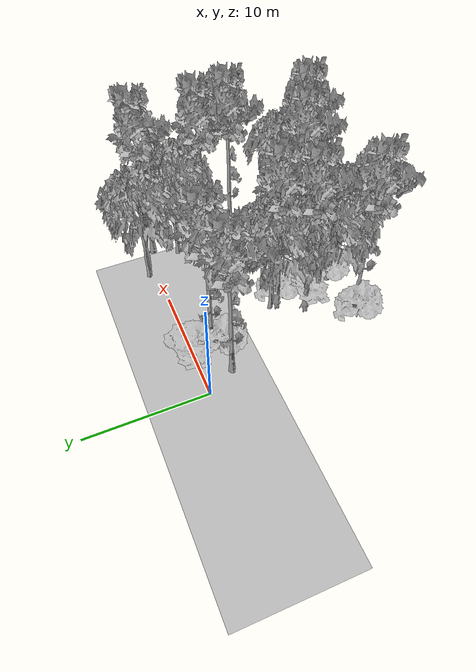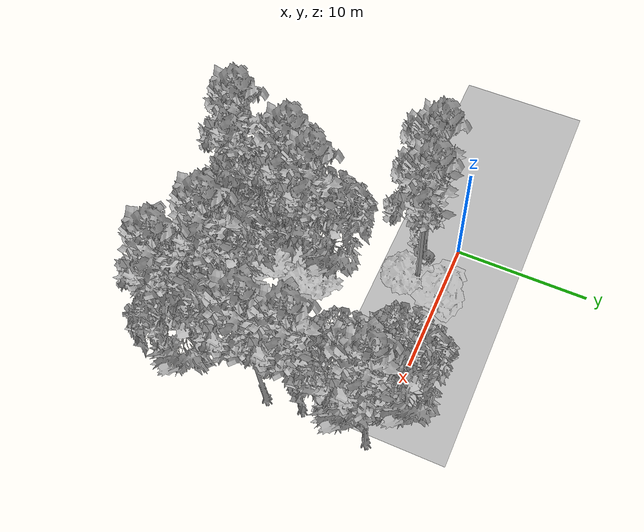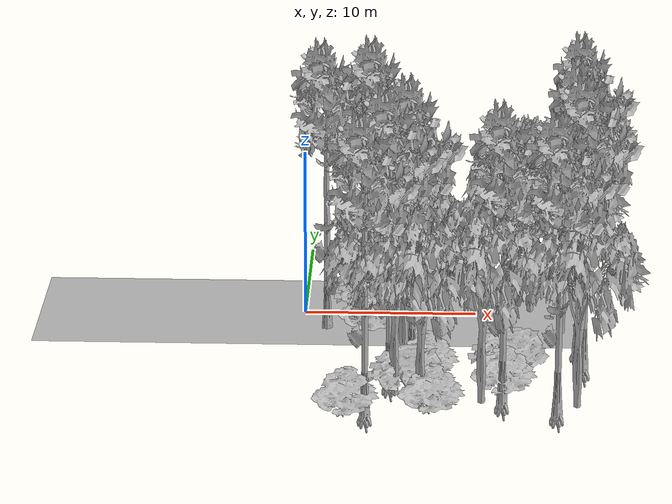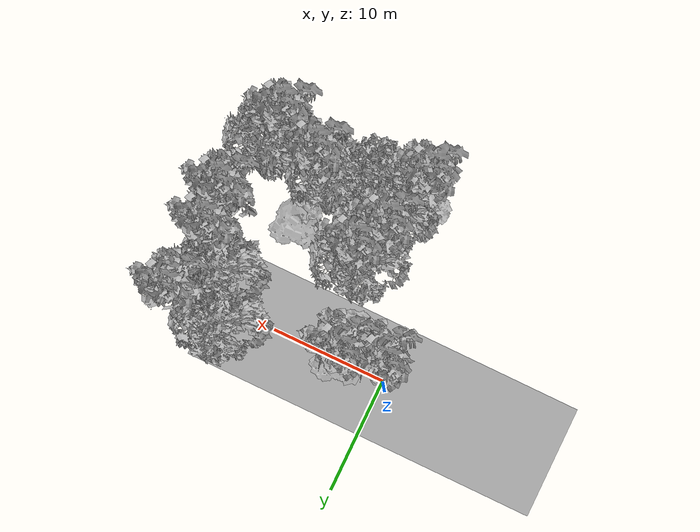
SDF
<sdf version="1.7">
 <world name="default">
  <model name="ground_plane">
   <static>1</static>
   <link name="link">
    <collision name="collision">
     <pose>-50 0 0 0 -0 0</pose>
     <geometry><plane><normal>0 0 1</normal><size>100 100</size></plane></geometry>
     <surface><contact><ode><min_depth>0.01</min_depth><max_vel>0</max_vel></ode></contact></surface>
    </collision>
    <visual name="grass">
     <cast_shadows>0</cast_shadows>
     <geometry>
      <mesh>
       <scale>0.5814285714285714 0.18142857142857144 0.1</scale>
       <uri>file://grass_plane/meshes/grass_plane.dae</uri>
      </mesh>
     </geometry>
    </visual>
   </link>
  </model>
  <model name="Tree 2">
   <static>1</static>
   <pose>14.374768445427776 -14.266316899726641 0 1.57079 -0 0</pose>
   <link name="link">
    <collision name="collision">
     <geometry><mesh><scale>3.5 5 3.5</scale><uri>model://tree_9/meshes/tree_9.obj</uri></mesh></geometry>
    </collision>
    <visual name="visual">
     <geometry><mesh><scale>3.5 5 3.5</scale><uri>model://tree_9/meshes/tree_9.obj</uri></mesh></geometry>
    </visual>
   </link>
  </model>
  <model name="Tree 22">
   <static>1</static>
   <pose>11.29381462864442 -11.099675055511366 0 1.57079 -0 0</pose>
   <link name="link">
    <collision name="collision">
     <geometry><mesh><scale>4 2.5 4</scale><uri>model://tree_1/meshes/tree_1.obj</uri></mesh></geometry>
    </collision>
    <visual name="visual">
     <geometry><mesh><scale>4 2.5 4</scale><uri>model://tree_1/meshes/tree_1.obj</uri></mesh></geometry>
    </visual>
   </link>
  </model>
  <model name="Tree 30">
   <static>1</static>
   <pose>14.890058464222292 -2.6212985577836694 0 1.57079 -0 0</pose>
   <link name="link">
    <collision name="collision">
     <geometry><mesh><scale>3.5 5 3.5</scale><uri>model://tree_2/meshes/tree_2.obj</uri></mesh></geometry>
    </collision>
    <visual name="visual">
     <geometry><mesh><scale>3.5 5 3.5</scale><uri>model://tree_2/meshes/tree_2.obj</uri></mesh></geometry>
    </visual>
   </link>
  </model>
  <model name="Tree 39">
   <static>1</static>
   <pose>13.136974198922417 0.6259014257530495 0 1.57079 -0 0</pose>
   <link name="link">
    <collision name="collision">
     <geometry><mesh><scale>3.5 5 3.5</scale><uri>model://tree_2/meshes/tree_2.obj</uri></mesh></geometry>
    </collision>
    <visual name="visual">
     <geometry><mesh><scale>3.5 5 3.5</scale><uri>model://tree_2/meshes/tree_2.obj</uri></mesh></geometry>
    </visual>
   </link>
  </model>
  <model name="Tree 81">
   <static>1</static>
   <pose>1.3451371119177864 -2.3091376741114598 0 1.57079 -0 0</pose>
   <link name="link">
    <collision name="collision">
     <geometry><mesh><scale>3.5 5 3.5</scale><uri>model://tree_9/meshes/tree_9.obj</uri></mesh></geometry>
    </collision>
    <visual name="visual">
     <geometry><mesh><scale>3.5 5 3.5</scale><uri>model://tree_9/meshes/tree_9.obj</uri></mesh></geometry>
    </visual>
   </link>
  </model>
  <model name="Tree 84">
   <static>1</static>
   <pose>16.02669139717615 -8.114682390269344 0 1.57079 -0 0</pose>
   <link name="link">
    <collision name="collision">
     <geometry><mesh><scale>3.5 5 3.5</scale><uri>model://tree_9/meshes/tree_9.obj</uri></mesh></geometry>
    </collision>
    <visual name="visual">
     <geometry><mesh><scale>3.5 5 3.5</scale><uri>model://tree_9/meshes/tree_9.obj</uri></mesh></geometry>
    </visual>
   </link>
  </model>
  <model name="Tree 108">
   <static>1</static>
   <pose>11.383459918608743 -12.845297648105404 0 1.57079 -0 0</pose>
   <link name="link">
    <collision name="collision">
     <geometry><mesh><scale>3.5 5 3.5</scale><uri>model://tree_9/meshes/tree_9.obj</uri></mesh></geometry>
    </collision>
    <visual name="visual">
     <geometry><mesh><scale>3.5 5 3.5</scale><uri>model://tree_9/meshes/tree_9.obj</uri></mesh></geometry>
    </visual>
   </link>
  </model>
  <model name="Tree 111">
   <static>1</static>
   <pose>6.816285070895688 -13.580637002414706 0 1.57079 -0 0</pose>
   <link name="link">
    <collision name="collision">
     <geometry><mesh><scale>3.5 5 3.5</scale><uri>model://tree_2/meshes/tree_2.obj</uri></mesh></geometry>
    </collision>
    <visual name="visual">
     <geometry><mesh><scale>3.5 5 3.5</scale><uri>model://tree_2/meshes/tree_2.obj</uri></mesh></geometry>
    </visual>
   </link>
  </model>
  <model name="Tree 123">
   <static>1</static>
   <pose>3.850670715000419 -14.683274335668377 0 1.57079 -0 0</pose>
   <link name="link">
    <collision name="collision">
     <geometry><mesh><scale>3.5 5 3.5</scale><uri>model://tree_9/meshes/tree_9.obj</uri></mesh></geometry>
    </collision>
    <visual name="visual">
     <geometry><mesh><scale>3.5 5 3.5</scale><uri>model://tree_9/meshes/tree_9.obj</uri></mesh></geometry>
    </visual>
   </link>
  </model>
  <model name="Tree 127">
   <static>1</static>
   <pose>3.6704576468748655 -2.5003399482191586 0 1.57079 -0 0</pose>
   <link name="link">
    <collision name="collision">
     <geometry><mesh><scale>4 2.5 4</scale><uri>model://tree_1/meshes/tree_1.obj</uri></mesh></geometry>
    </collision>
    <visual name="visual">
     <geometry><mesh><scale>4 2.5 4</scale><uri>model://tree_1/meshes/tree_1.obj</uri></mesh></geometry>
    </visual>
   </link>
  </model>
  <model name="Tree 129">
   <static>1</static>
   <pose>5.802538944356812 -7.6661183372397055 0 1.57079 -0 0</pose>
   <link name="link">
    <collision name="collision">
     <geometry><mesh><scale>3.5 5 3.5</scale><uri>model://tree_2/meshes/tree_2.obj</uri></mesh></geometry>
    </collision>
    <visual name="visual">
     <geometry><mesh><scale>3.5 5 3.5</scale><uri>model://tree_2/meshes/tree_2.obj</uri></mesh></geometry>
    </visual>
   </link>
  </model>
  <model name="Tree 159">
   <static>1</static>
   <pose>15.432079053332686 -13.052223563453492 0 1.57079 -0 0</pose>
   <link name="link">
    <collision name="collision">
     <geometry><mesh><scale>3.5 5 3.5</scale><uri>model://tree_2/meshes/tree_2.obj</uri></mesh></geometry>
    </collision>
    <visual name="visual">
     <geometry><mesh><scale>3.5 5 3.5</scale><uri>model://tree_2/meshes/tree_2.obj</uri></mesh></geometry>
    </visual>
   </link>
  </model>
  <model name="Tree 162">
   <static>1</static>
   <pose>5.356654157508665 -11.734552383005962 0 1.57079 -0 0</pose>
   <link name="link">
    <collision name="collision">
     <geometry><mesh><scale>3.5 5 3.5</scale><uri>model://tree_2/meshes/tree_2.obj</uri></mesh></geometry>
    </collision>
    <visual name="visual">
     <geometry><mesh><scale>3.5 5 3.5</scale><uri>model://tree_2/meshes/tree_2.obj</uri></mesh></geometry>
    </visual>
   </link>
  </model>
  <model name="Tree 167">
   <static>1</static>
   <pose>2.584979348222845 -14.254738411093577 0 1.57079 -0 0</pose>
   <link name="link">
    <collision name="collision">
     <geometry><mesh><scale>4 2.5 4</scale><uri>model://tree_1/meshes/tree_1.obj</uri></mesh></geometry>
    </collision>
    <visual name="visual">
     <geometry><mesh><scale>4 2.5 4</scale><uri>model://tree_1/meshes/tree_1.obj</uri></mesh></geometry>
    </visual>
   </link>
  </model>
  <model name="Tree 170">
   <static>1</static>
   <pose>5.111862936082737 -10.540897317580361 0 1.57079 -0 0</pose>
   <link name="link">
    <collision name="collision">
     <geometry><mesh><scale>3.5 5 3.5</scale><uri>model://tree_9/meshes/tree_9.obj</uri></mesh></geometry>
    </collision>
    <visual name="visual">
     <geometry><mesh><scale>3.5 5 3.5</scale><uri>model://tree_9/meshes/tree_9.obj</uri></mesh></geometry>
    </visual>
   </link>
  </model>
  <model name="Tree 175">
   <static>1</static>
   <pose>4.048351936997314 -0.10338214217612851 0 1.57079 -0 0</pose>
   <link name="link">
    <collision name="collision">
     <geometry><mesh><scale>3 2 3</scale><uri>model://tree_3/meshes/tree_3.obj</uri></mesh></geometry>
    </collision>
    <visual name="visual">
     <geometry><mesh><scale>3 2 3</scale><uri>model://tree_3/meshes/tree_3.obj</uri></mesh></geometry>
    </visual>
   </link>
  </model>
  <model name="Tree 187">
   <static>1</static>
   <pose>6.342143412628609 -8.47081315666378 0 1.57079 -0 0</pose>
   <link name="link">
    <collision name="collision">
     <geometry><mesh><scale>3.5 5 3.5</scale><uri>model://tree_9/meshes/tree_9.obj</uri></mesh></geometry>
    </collision>
    <visual name="visual">
     <geometry><mesh><scale>3.5 5 3.5</scale><uri>model://tree_9/meshes/tree_9.obj</uri></mesh></geometry>
    </visual>
   </link>
  </model>
  <model name="Tree 196">
   <static>1</static>
   <pose>7.2906518444481705 -13.742269618722064 0 1.57079 -0 0</pose>
   <link name="link">
    <collision name="collision">
     <geometry><mesh><scale>4 2.5 4</scale><uri>model://tree_1/meshes/tree_1.obj</uri></mesh></geometry>
    </collision>
    <visual name="visual">
     <geometry><mesh><scale>4 2.5 4</scale><uri>model://tree_1/meshes/tree_1.obj</uri></mesh></geometry>
    </visual>
   </link>
  </model>
  <model name="Tree 207">
   <static>1</static>
   <pose>11.90162271325439 -8.733679386153472 0 1.57079 -0 0</pose>
   <link name="link">
    <collision name="collision">
     <geometry><mesh><scale>3 2 3</scale><uri>model://tree_3/meshes/tree_3.obj</uri></mesh></geometry>
    </collision>
    <visual name="visual">
     <geometry><mesh><scale>3 2 3</scale><uri>model://tree_3/meshes/tree_3.obj</uri></mesh></geometry>
    </visual>
   </link>
  </model>
  <model name="Tree 222">
   <static>1</static>
   <pose>10.160218929883932 -12.645455089025047 0 1.57079 -0 0</pose>
   <link name="link">
    <collision name="collision">
     <geometry><mesh><scale>3.5 5 3.5</scale><uri>model://tree_2/meshes/tree_2.obj</uri></mesh></geometry>
    </collision>
    <visual name="visual">
     <geometry><mesh><scale>3.5 5 3.5</scale><uri>model://tree_2/meshes/tree_2.obj</uri></mesh></geometry>
    </visual>
   </link>
  </model>
  <model name="Tree 226">
   <static>1</static>
   <pose>16.19581596352269 -0.5945380688487081 0 1.57079 -0 0</pose>
   <link name="link">
    <collision name="collision">
     <geometry><mesh><scale>3.5 5 3.5</scale><uri>model://tree_9/meshes/tree_9.obj</uri></mesh></geometry>
    </collision>
    <visual name="visual">
     <geometry><mesh><scale>3.5 5 3.5</scale><uri>model://tree_9/meshes/tree_9.obj</uri></mesh></geometry>
    </visual>
   </link>
  </model>
  <model name="Tree 230">
   <static>1</static>
   <pose>4.1971367598955425 -1.7372275467740277 0 1.57079 -0 0</pose>
   <link name="link">
    <collision name="collision">
     <geometry><mesh><scale>3.5 5 3.5</scale><uri>model://tree_9/meshes/tree_9.obj</uri></mesh></geometry>
    </collision>
    <visual name="visual">
     <geometry><mesh><scale>3.5 5 3.5</scale><uri>model://tree_9/meshes/tree_9.obj</uri></mesh></geometry>
    </visual>
   </link>
  </model>
  <model name="Tree 231">
   <static>1</static>
   <pose>6.9768421979850785 -9.114438457657151 0 1.57079 -0 0</pose>
   <link name="link">
    <collision name="collision">
     <geometry><mesh><scale>4 2.5 4</scale><uri>model://tree_1/meshes/tree_1.obj</uri></mesh></geometry>
    </collision>
    <visual name="visual">
     <geometry><mesh><scale>4 2.5 4</scale><uri>model://tree_1/meshes/tree_1.obj</uri></mesh></geometry>
    </visual>
   </link>
  </model>
  <model name="Tree 236">
   <static>1</static>
   <pose>6.187535704256767 -11.485950539982763 0 1.57079 -0 0</pose>
   <link name="link">
    <collision name="collision">
     <geometry><mesh><scale>3 2 3</scale><uri>model://tree_3/meshes/tree_3.obj</uri></mesh></geometry>
    </collision>
    <visual name="visual">
     <geometry><mesh><scale>3 2 3</scale><uri>model://tree_3/meshes/tree_3.obj</uri></mesh></geometry>
    </visual>
   </link>
  </model>
  <model name="Tree 296">
   <static>1</static>
   <pose>15.79165164226805 -5.524443015529332 0 1.57079 -0 0</pose>
   <link name="link">
    <collision name="collision">
     <geometry><mesh><scale>3.5 5 3.5</scale><uri>model://tree_9/meshes/tree_9.obj</uri></mesh></geometry>
    </collision>
    <visual name="visual">
     <geometry><mesh><scale>3.5 5 3.5</scale><uri>model://tree_9/meshes/tree_9.obj</uri></mesh></geometry>
    </visual>
   </link>
  </model>
 </world>
</sdf>
